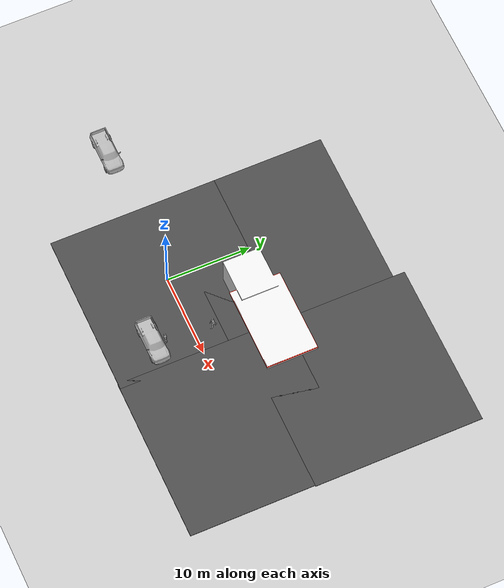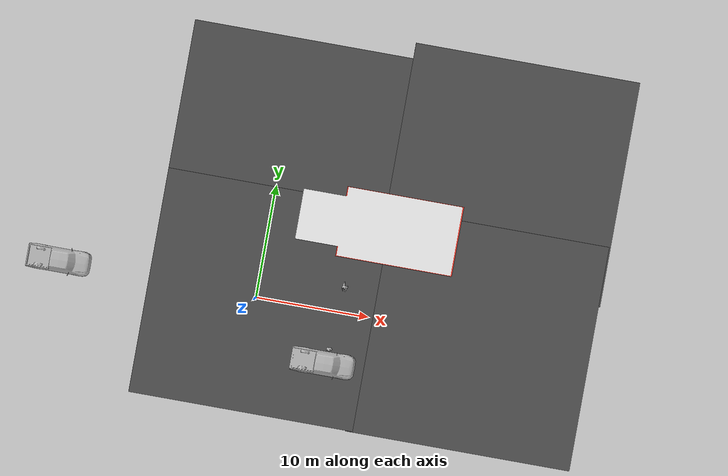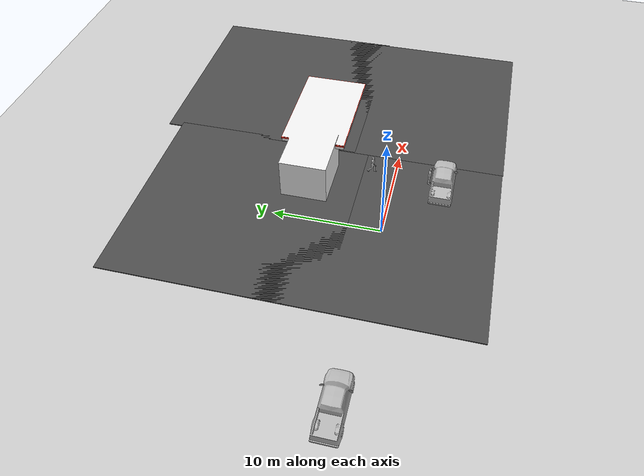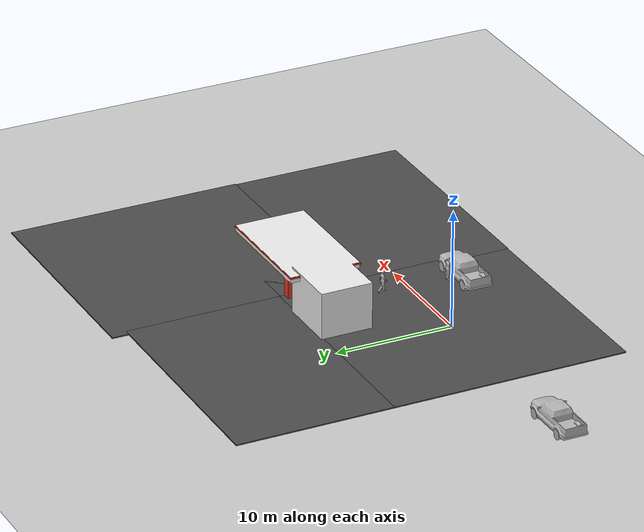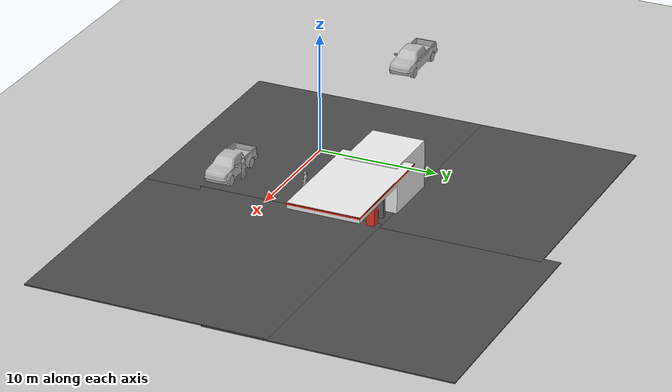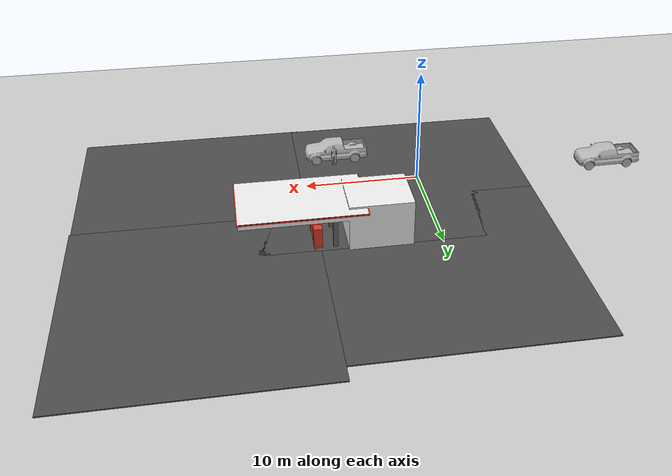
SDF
<sdf version="1.6">
 <world name="default">
  <light name="sun" type="directional">
   <pose>0 0 10 0 -0 0</pose>
   <diffuse>0.8 0.8 0.8 1</diffuse>
   <specular>0.1 0.1 0.1 1</specular>
   <attenuation>
    <range>1000</range>
    <constant>0.9</constant>
    <linear>0.01</linear>
    <quadratic>0.001</quadratic>
   </attenuation>
   <direction>-0.5 0.5 -1</direction>
  </light>
  <model name="ground_plane">
   <static>1</static>
   <link name="link">
    <collision name="collision">
     <geometry><plane><normal>0 0 1</normal><size>100 100</size></plane></geometry>
     <surface><friction><ode><mu>100</mu><mu2>50</mu2></ode></friction></surface>
    </collision>
    <visual name="visual">
     <cast_shadows>0</cast_shadows>
     <geometry><plane><normal>0 0 1</normal><size>100 100</size></plane></geometry>
     <material>
      <script><uri>file://media/materials/scripts/gazebo.material</uri><name>Gazebo/Grey</name></script>
     </material>
    </visual>
   </link>
  </model>
  <gravity>0 0 -9.8</gravity>
  <magnetic_field>6e-06 2.3e-05 -4.2e-05</magnetic_field>
  <atmosphere type="adiabatic"/>
  <physics name="default_physics" default="0" type="ode">
   <max_step_size>0.001</max_step_size>
   <real_time_factor>1</real_time_factor>
   <real_time_update_rate>1000</real_time_update_rate>
  </physics>
  <scene><ambient>0.4 0.4 0.4 1</ambient><background>0.7 0.7 0.7 1</background><shadows>1</shadows></scene>
  <spherical_coordinates>
   <surface_model>EARTH_WGS84</surface_model>
   <latitude_deg>0</latitude_deg>
   <longitude_deg>0</longitude_deg>
   <elevation>0</elevation>
   <heading_deg>0</heading_deg>
  </spherical_coordinates>
  <model name="asphalt_plane">
   <static>1</static>
   <link name="link">
    <collision name="collision"><geometry><box><size>20 20 0.1</size></box></geometry></collision>
    <visual name="visual">
     <cast_shadows>0</cast_shadows>
     <geometry><box><size>20 20 0.1</size></box></geometry>
     <material>
      <script>
       <uri>model://asphalt_plane/materials/scripts</uri>
       <uri>model://asphalt_plane/materials/textures</uri>
       <name>vrc/asphalt</name>
      </script>
     </material>
    </visual>
   </link>
   <pose>0.3795 -0.118401 0 0 -0 0</pose>
  </model>
  <model name="asphalt_plane_0">
   <static>1</static>
   <link name="link">
    <collision name="collision"><geometry><box><size>20 20 0.1</size></box></geometry></collision>
    <visual name="visual">
     <cast_shadows>0</cast_shadows>
     <geometry><box><size>20 20 0.1</size></box></geometry>
     <material>
      <script>
       <uri>model://asphalt_plane/materials/scripts</uri>
       <uri>model://asphalt_plane/materials/textures</uri>
       <name>vrc/asphalt</name>
      </script>
     </material>
    </visual>
   </link>
   <pose>19.7389 -0.17572 0 0 -0 0</pose>
  </model>
  <model name="asphalt_plane_1">
   <static>1</static>
   <link name="link">
    <collision name="collision"><geometry><box><size>20 20 0.1</size></box></geometry></collision>
    <visual name="visual">
     <cast_shadows>0</cast_shadows>
     <geometry><box><size>20 20 0.1</size></box></geometry>
     <material>
      <script>
       <uri>model://asphalt_plane/materials/scripts</uri>
       <uri>model://asphalt_plane/materials/textures</uri>
       <name>vrc/asphalt</name>
      </script>
     </material>
    </visual>
   </link>
   <pose>19.8556 14.5151 0 0 -0 0</pose>
  </model>
  <model name="asphalt_plane_2">
   <static>1</static>
   <link name="link">
    <collision name="collision"><geometry><box><size>20 20 0.1</size></box></geometry></collision>
    <visual name="visual">
     <cast_shadows>0</cast_shadows>
     <geometry><box><size>20 20 0.1</size></box></geometry>
     <material>
      <script>
       <uri>model://asphalt_plane/materials/scripts</uri>
       <uri>model://asphalt_plane/materials/textures</uri>
       <name>vrc/asphalt</name>
      </script>
     </material>
    </visual>
   </link>
   <pose>0.381431 13.1103 0 0 -0 0</pose>
  </model>
  <model name="Gas Station">
   <static>1</static>
   <link name="link">
    <collision name="collision">
     <geometry><mesh><uri>model://gas_station/meshes/gas_station.dae</uri><scale>1 1 1</scale></mesh></geometry>
    </collision>
    <visual name="visual">
     <geometry><mesh><uri>model://gas_station/meshes/gas_station.dae</uri><scale>1 1 1</scale></mesh></geometry>
     <material>
      <script>
       <uri>model://gas_station/materials/scripts</uri>
       <uri>model://gas_station/materials/textures</uri>
       <name>GasStation/Diffuse</name>
      </script>
      <shader type="normal_map_object_space"><normal_map>GasStation_Normal.png</normal_map></shader>
     </material>
    </visual>
   </link>
   <pose>8.86605 7.89221 0 0 -0 0</pose>
  </model>
  <model name="pickup">
   <static>1</static>
   <link name="link">
    <collision name="collision">
     <pose>0 0 0 0 0 -1.5708</pose>
     <geometry><mesh><uri>model://pickup/meshes/pickup.dae</uri><scale>1 1 1</scale></mesh></geometry>
    </collision>
    <visual name="visual">
     <pose>0 0 0 0 0 -1.5708</pose>
     <geometry><mesh><uri>model://pickup/meshes/pickup.dae</uri><scale>1 1 1</scale></mesh></geometry>
    </visual>
   </link>
   <pose>6.86153 -4.62207 0 0 -0 0</pose>
  </model>
  <model name="pickup_0">
   <static>1</static>
   <link name="link">
    <collision name="collision">
     <pose>0 0 0 0 0 -1.5708</pose>
     <geometry><mesh><uri>model://pickup/meshes/pickup.dae</uri><scale>1 1 1</scale></mesh></geometry>
    </collision>
    <visual name="visual">
     <pose>0 0 0 0 0 -1.5708</pose>
     <geometry><mesh><uri>model://pickup/meshes/pickup.dae</uri><scale>1 1 1</scale></mesh></geometry>
    </visual>
   </link>
   <pose>-17.5013 0.204782 0 0 -0 0</pose>
  </model>
  <model name="person_walking">
   <link name="link">
    <inertial>
     <pose>0 0 0.95 0 -0 0</pose>
     <mass>80</mass>
     <inertia><ixx>27.82</ixx><ixy>0</ixy><ixz>0</ixz><iyy>24.88</iyy><iyz>0</iyz><izz>4.57</izz></inertia>
    </inertial>
    <collision name="bottom">
     <pose>0 0 0.01 0 -0 0</pose>
     <geometry><box><size>0.35 0.75 0.02</size></box></geometry>
    </collision>
    <collision name="person">
     <pose>0 0 -0.02 0 -0 0</pose>
     <geometry><mesh><uri>model://person_walking/meshes/walking.dae</uri><scale>1 1 1</scale></mesh></geometry>
    </collision>
    <visual name="visual">
     <pose>0 0 -0.02 0 -0 0</pose>
     <geometry><mesh><uri>model://person_walking/meshes/walking.dae</uri><scale>1 1 1</scale></mesh></geometry>
    </visual>
   </link>
   <pose>7.47576 2.29214 0.049999 2e-06 -1e-06 0.001446</pose>
  </model>
  <model name="person_standing">
   <link name="link">
    <inertial>
     <pose>0 -0.1 0.95 0 -0 0</pose>
     <mass>80</mass>
     <inertia><ixx>24.88</ixx><ixy>0</ixy><ixz>0</ixz><iyy>25.73</iyy><iyz>0</iyz><izz>2.48</izz></inertia>
    </inertial>
    <collision name="bottom">
     <pose>0 -0.1 0.01 0 -0 0</pose>
     <geometry><box><size>0.5 0.35 0.02</size></box></geometry>
    </collision>
    <collision name="person">
     <pose>0 0 0.02 0.04 -0 0</pose>
     <geometry><mesh><uri>model://person_standing/meshes/standing.dae</uri><scale>1 1 1</scale></mesh></geometry>
    </collision>
    <visual name="visual">
     <pose>0 0 0.02 0.04 -0 0</pose>
     <geometry><mesh><uri>model://person_standing/meshes/standing.dae</uri><scale>1 1 1</scale></mesh></geometry>
    </visual>
   </link>
   <pose>7.07453 -3.22582 0.05 -1e-06 -1e-06 0.007288</pose>
  </model>
 </world>
</sdf>
